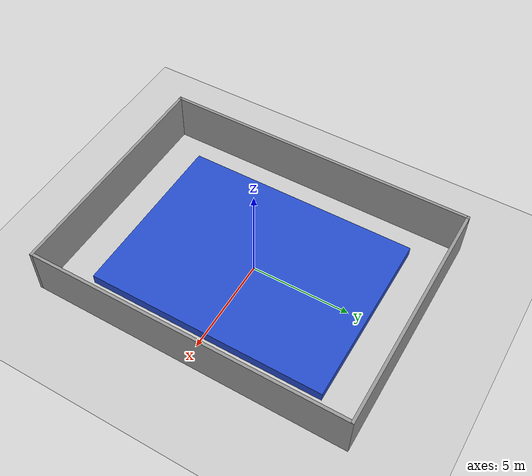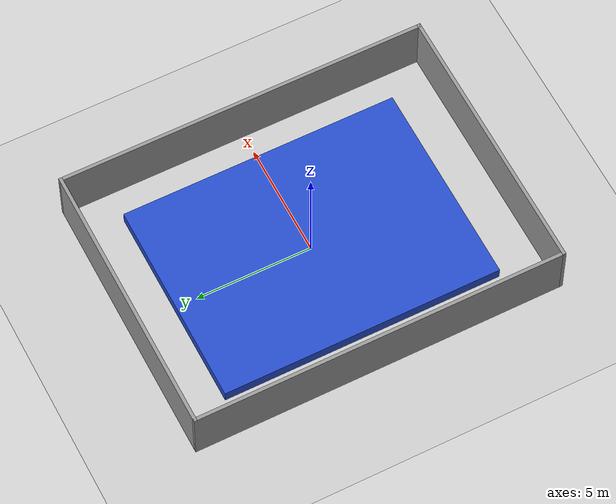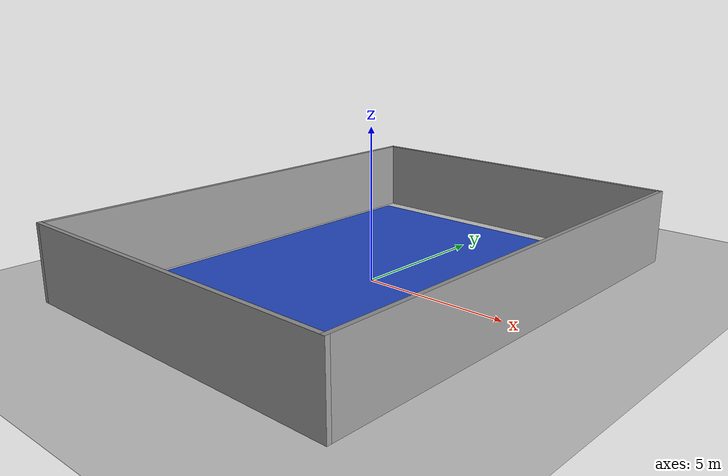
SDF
<sdf version="1.7">
 <world name="default">
  <light name="sun" type="directional">
   <pose>0 0 10 0 -0 0</pose>
   <diffuse>0.8 0.8 0.8 1</diffuse>
   <specular>0.2 0.2 0.2 1</specular>
   <attenuation>
    <range>1000</range>
    <constant>0.9</constant>
    <linear>0.01</linear>
    <quadratic>0.001</quadratic>
   </attenuation>
   <direction>-0.5 0.1 -0.9</direction>
   <spot><inner_angle>0</inner_angle><outer_angle>0</outer_angle><falloff>0</falloff></spot>
  </light>
  <model name="ground_plane">
   <static>1</static>
   <link name="link">
    <collision name="collision">
     <geometry><plane><normal>0 0 1</normal><size>100 100</size></plane></geometry>
     <surface><friction><ode><mu>100</mu><mu2>50</mu2></ode></friction></surface>
    </collision>
    <visual name="visual">
     <cast_shadows>0</cast_shadows>
     <geometry><plane><normal>0 0 1</normal><size>100 100</size></plane></geometry>
     <material>
      <script><uri>file://media/materials/scripts/gazebo.material</uri><name>Gazebo/Grey</name></script>
     </material>
    </visual>
   </link>
  </model>
  <gravity>0 0 -9.8</gravity>
  <magnetic_field>6e-06 2.3e-05 -4.2e-05</magnetic_field>
  <atmosphere type="adiabatic"/>
  <physics type="ode">
   <max_step_size>0.001</max_step_size>
   <real_time_factor>1</real_time_factor>
   <real_time_update_rate>1000</real_time_update_rate>
  </physics>
  <scene><ambient>0.4 0.4 0.4 1</ambient><background>0.7 0.7 0.7 1</background><shadows>1</shadows></scene>
  <audio><device>default</device></audio>
  <spherical_coordinates>
   <surface_model>EARTH_WGS84</surface_model>
   <latitude_deg>0</latitude_deg>
   <longitude_deg>0</longitude_deg>
   <elevation>0</elevation>
   <heading_deg>0</heading_deg>
  </spherical_coordinates>
  <model name="pond">
   <link name="link">
    <inertial>
     <mass>1</mass>
     <inertia><ixx>0</ixx><ixy>0</ixy><ixz>0</ixz><iyy>0.166667</iyy><iyz>0</iyz><izz>0</izz></inertia>
    </inertial>
    <gravity>0</gravity>
    <visual name="visual">
     <geometry><box><size>9 12 0.999998</size></box></geometry>
     <material>
      <script><name>Gazebo/Blue</name><uri>file://media/materials/scripts/gazebo.material</uri></script>
      <shader type="pixel"><normal_map>__default__</normal_map></shader>
      <ambient>0 0 1 1</ambient>
      <diffuse>0 0 1 1</diffuse>
      <specular>0.01 0.01 0.01 1</specular>
      <emissive>0 0 0 1</emissive>
     </material>
    </visual>
    <collision name="collision">
     <geometry><box><size>9.17388 12.7012 0.999998</size></box></geometry>
     <surface>
      <friction>
       <ode><mu>1</mu><mu2>1</mu2><fdir1>0 0 0</fdir1><slip1>0</slip1><slip2>0</slip2></ode>
       <torsional>
        <coefficient>1</coefficient>
        <patch_radius>0</patch_radius>
        <surface_radius>0</surface_radius>
        <use_patch_radius>1</use_patch_radius>
        <ode><slip>0</slip></ode>
       </torsional>
      </friction>
      <bounce><restitution_coefficient>0</restitution_coefficient><threshold>1e+06</threshold></bounce>
      <contact>
       <collide_without_contact>0</collide_without_contact>
       <collide_without_contact_bitmask>1</collide_without_contact_bitmask>
       <collide_bitmask>1</collide_bitmask>
       <ode>
        <soft_cfm>0</soft_cfm>
        <soft_erp>0.2</soft_erp>
        <kp>1e+13</kp>
        <kd>1</kd>
        <max_vel>0.01</max_vel>
        <min_depth>0</min_depth>
       </ode>
       <bullet>
        <split_impulse>1</split_impulse>
        <split_impulse_penetration_threshold>-0.01</split_impulse_penetration_threshold>
        <soft_cfm>0</soft_cfm>
        <soft_erp>0.2</soft_erp>
        <kp>1e+13</kp>
        <kd>1</kd>
       </bullet>
      </contact>
     </surface>
    </collision>
   </link>
   <static>1</static>
  </model>
  <model name="pond_walls">
   <link name="Wall_19">
    <collision name="Wall_19_Collision">
     <geometry><box><size>12 0.15 2.5</size></box></geometry>
     <pose>0 0 1.25 0 -0 0</pose>
    </collision>
    <visual name="Wall_19_Visual">
     <pose>0 0 1.25 0 -0 0</pose>
     <geometry><box><size>12 0.15 2.5</size></box></geometry>
     <material>
      <script><uri>file://media/materials/scripts/gazebo.material</uri><name>Gazebo/Grey</name></script>
      <ambient>1 1 1 1</ambient>
     </material>
     <meta><layer>0</layer></meta>
    </visual>
    <pose>0 7.925 0 0 -0 0</pose>
   </link>
   <link name="Wall_22">
    <collision name="Wall_22_Collision">
     <geometry><box><size>16 0.15 2.5</size></box></geometry>
     <pose>0 0 1.25 0 -0 0</pose>
    </collision>
    <visual name="Wall_22_Visual">
     <pose>0 0 1.25 0 -0 0</pose>
     <geometry><box><size>16 0.15 2.5</size></box></geometry>
     <material>
      <script><uri>file://media/materials/scripts/gazebo.material</uri><name>Gazebo/Grey</name></script>
      <ambient>1 1 1 1</ambient>
     </material>
     <meta><layer>0</layer></meta>
    </visual>
    <pose>5.925 0 0 0 -0 -1.5708</pose>
   </link>
   <link name="Wall_24">
    <collision name="Wall_24_Collision">
     <geometry><box><size>12 0.15 2.5</size></box></geometry>
     <pose>0 0 1.25 0 -0 0</pose>
    </collision>
    <visual name="Wall_24_Visual">
     <pose>0 0 1.25 0 -0 0</pose>
     <geometry><box><size>12 0.15 2.5</size></box></geometry>
     <material>
      <script><uri>file://media/materials/scripts/gazebo.material</uri><name>Gazebo/Grey</name></script>
      <ambient>1 1 1 1</ambient>
     </material>
     <meta><layer>0</layer></meta>
    </visual>
    <pose>0 -7.925 0 0 -0 3.14159</pose>
   </link>
   <link name="Wall_28">
    <collision name="Wall_28_Collision">
     <geometry><box><size>16 0.15 2.5</size></box></geometry>
     <pose>0 0 1.25 0 -0 0</pose>
    </collision>
    <visual name="Wall_28_Visual">
     <pose>0 0 1.25 0 -0 0</pose>
     <geometry><box><size>16 0.15 2.5</size></box></geometry>
     <material>
      <script><uri>file://media/materials/scripts/gazebo.material</uri><name>Gazebo/Grey</name></script>
      <ambient>1 1 1 1</ambient>
     </material>
     <meta><layer>0</layer></meta>
    </visual>
    <pose>-5.925 0 0 0 -0 1.5708</pose>
   </link>
   <static>1</static>
  </model>
 </world>
</sdf>
